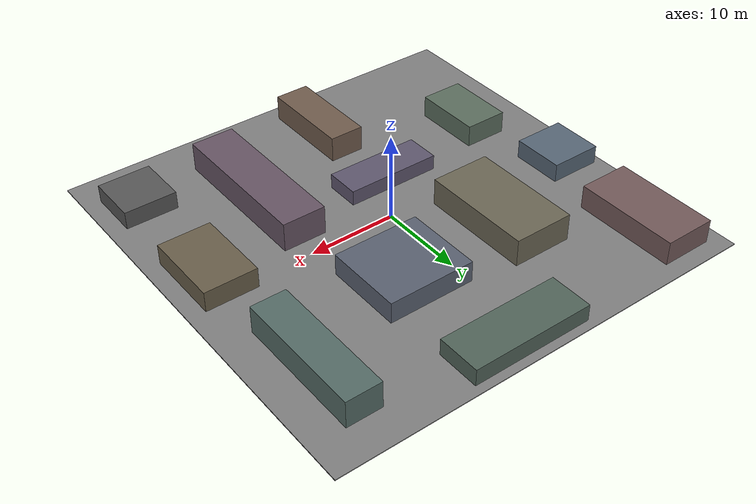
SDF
<?xml version="1.0" ?>
<sdf version="1.6">
  <world name="indoor_environment">
    <plugin name='ros_interface_plugin' filename='librotors_gazebo_ros_interface_plugin.so'/>
    <physics type='ode'>
      <gravity>0 0 -9.8</gravity>
      <max_step_size>0.001</max_step_size>
      <max_contacts>20</max_contacts> <!-- 最大碰撞检测点数 -->
      <real_time_factor>1</real_time_factor>
      <real_time_update_rate>1000</real_time_update_rate>
    </physics>
    <light name='sun' type='directional'>
      <cast_shadows>1</cast_shadows>
      <pose>0 0 10 0 -0 0</pose>
      <diffuse>0.8 0.8 0.8 1</diffuse>
      <specular>0.2 0.2 0.2 1</specular>
      <attenuation>
        <range>1000</range>
        <constant>0.9</constant>
        <linear>0.01</linear>
        <quadratic>0.001</quadratic>
      </attenuation>
      <direction>-0.5 0.1 -0.9</direction>
      <spot>
        <inner_angle>0</inner_angle>
        <outer_angle>0</outer_angle>
        <falloff>0</falloff>
      </spot>
    </light>

    <scene>
      <ambient>0.4 0.4 0.4 1</ambient>
      <background>0.7 0.7 0.7 1</background>
      <shadows>1</shadows>
    </scene>
    <spherical_coordinates>
      <surface_model>EARTH_WGS84</surface_model>
      <latitude_deg>0</latitude_deg>
      <longitude_deg>0</longitude_deg>
      <elevation>0</elevation>
      <heading_deg>0</heading_deg>
    </spherical_coordinates>

    <!-- 增加更大的地面 -->
    <model name="floor">
      <static>true</static> <!-- 地面是静态物体 -->
      <link name="floor_link">
        <collision name="collision">
          <geometry>
            <box>
              <size>50 50 0.1</size> <!-- 地面大小：50x50米，厚度0.1米 -->
            </box>
          </geometry>
        </collision>
        <visual name="visual">
          <geometry>
            <box>
              <size>50 50 0.1</size>
            </box>
          </geometry>
          <material>
            <ambient>0.5 0.5 0.5 1</ambient> <!-- 灰色地面 -->
            <diffuse>0.5 0.5 0.5 1</diffuse>
          </material>
        </visual>
      </link>
    </model>

    <!-- Random small box obstacles (20) -->
    <!-- Map boundary: x,y in [-25, 25]  -->

    <model name="obstacle_01">
      <static>true</static>
      <pose>-20 17 1.4 0 0 0</pose>
      <link name="link">
        <collision name="collision">
          <geometry><box><size>6 12 2.8</size></box></geometry>
        </collision>
        <visual name="visual">
          <geometry><box><size>6 12 2.8</size></box></geometry>
          <material>
            <ambient>0.45 0.35 0.35 1</ambient>
            <diffuse>0.45 0.35 0.35 1</diffuse>
          </material>
        </visual>
      </link>
    </model>

    <model name="obstacle_02">
      <static>true</static>
      <pose>-21 3 1.1 0 0 0</pose>
      <link name="link">
        <collision name="collision">
          <geometry><box><size>6 6 2.2</size></box></geometry>
        </collision>
        <visual name="visual">
          <geometry><box><size>6 6 2.2</size></box></geometry>
          <material>
            <ambient>0.34 0.40 0.46 1</ambient>
            <diffuse>0.34 0.40 0.46 1</diffuse>
          </material>
        </visual>
      </link>
    </model>

    <model name="obstacle_03">
      <static>true</static>
      <pose>-17.5 -9 1.3 0 0 0</pose>
      <link name="link">
        <collision name="collision">
          <geometry><box><size>5 8 2.6</size></box></geometry>
        </collision>
        <visual name="visual">
          <geometry><box><size>5 8 2.6</size></box></geometry>
          <material>
            <ambient>0.36 0.43 0.37 1</ambient>
            <diffuse>0.36 0.43 0.37 1</diffuse>
          </material>
        </visual>
      </link>
    </model>

    <model name="obstacle_04">
      <static>true</static>
      <pose>-8.5 7.5 1.6 0 0 0</pose>
      <link name="link">
        <collision name="collision">
          <geometry><box><size>7 13 3.2</size></box></geometry>
        </collision>
        <visual name="visual">
          <geometry><box><size>7 13 3.2</size></box></geometry>
          <material>
            <ambient>0.42 0.40 0.33 1</ambient>
            <diffuse>0.42 0.40 0.33 1</diffuse>
          </material>
        </visual>
      </link>
    </model>

    <model name="obstacle_05">
      <static>true</static>
      <pose>-3.5 -6.0 0.9 0 0 0</pose>
      <link name="link">
        <collision name="collision">
          <geometry><box><size>11 4 1.8</size></box></geometry>
        </collision>
        <visual name="visual">
          <geometry><box><size>11 4 1.8</size></box></geometry>
          <material>
            <ambient>0.37 0.34 0.43 1</ambient>
            <diffuse>0.37 0.34 0.43 1</diffuse>
          </material>
        </visual>
      </link>
    </model>

    <model name="obstacle_06">
      <static>true</static>
      <pose>2 21.5 1.0 0 0 0</pose>
      <link name="link">
        <collision name="collision">
          <geometry><box><size>14 5 2.0</size></box></geometry>
        </collision>
        <visual name="visual">
          <geometry><box><size>14 5 2.0</size></box></geometry>
          <material>
            <ambient>0.32 0.39 0.35 1</ambient>
            <diffuse>0.32 0.39 0.35 1</diffuse>
          </material>
        </visual>
      </link>
    </model>

    <model name="obstacle_07">
      <static>true</static>
      <pose>-3 -17.5 1.5 0 0 0</pose>
      <link name="link">
        <collision name="collision">
          <geometry><box><size>4 11 3.0</size></box></geometry>
        </collision>
        <visual name="visual">
          <geometry><box><size>4 11 3.0</size></box></geometry>
          <material>
            <ambient>0.44 0.36 0.30 1</ambient>
            <diffuse>0.44 0.36 0.30 1</diffuse>
          </material>
        </visual>
      </link>
    </model>

    <model name="obstacle_08">
      <static>true</static>
      <pose>5 8.5 1.25 0 0 0</pose>
      <link name="link">
        <collision name="collision">
          <geometry><box><size>10 9 2.5</size></box></geometry>
        </collision>
        <visual name="visual">
          <geometry><box><size>10 9 2.5</size></box></geometry>
          <material>
            <ambient>0.35 0.38 0.44 1</ambient>
            <diffuse>0.35 0.38 0.44 1</diffuse>
          </material>
        </visual>
      </link>
    </model>

    <model name="obstacle_09">
      <static>true</static>
      <pose>9.5 -11 1.7 0 0 0</pose>
      <link name="link">
        <collision name="collision">
          <geometry><box><size>5 18 3.4</size></box></geometry>
        </collision>
        <visual name="visual">
          <geometry><box><size>5 18 3.4</size></box></geometry>
          <material>
            <ambient>0.40 0.33 0.39 1</ambient>
            <diffuse>0.40 0.33 0.39 1</diffuse>
          </material>
        </visual>
      </link>
    </model>

    <model name="obstacle_10">
      <static>true</static>
      <pose>19 13.5 1.6 0 0 0</pose>
      <link name="link">
        <collision name="collision">
          <geometry><box><size>4 15 3.2</size></box></geometry>
        </collision>
        <visual name="visual">
          <geometry><box><size>4 15 3.2</size></box></geometry>
          <material>
            <ambient>0.33 0.42 0.40 1</ambient>
            <diffuse>0.33 0.42 0.40 1</diffuse>
          </material>
        </visual>
      </link>
    </model>

    <model name="obstacle_11">
      <static>true</static>
      <pose>20 -3.5 1.2 0 0 0</pose>
      <link name="link">
        <collision name="collision">
          <geometry><box><size>6 9 2.4</size></box></geometry>
        </collision>
        <visual name="visual">
          <geometry><box><size>6 9 2.4</size></box></geometry>
          <material>
            <ambient>0.41 0.37 0.29 1</ambient>
            <diffuse>0.41 0.37 0.29 1</diffuse>
          </material>
        </visual>
      </link>
    </model>

    <model name="obstacle_12">
      <static>true</static>
      <pose>20 -18 1.05 0 0 0</pose>
      <link name="link">
        <collision name="collision">
          <geometry><box><size>6 6 2.1</size></box></geometry>
        </collision>
        <visual name="visual">
          <geometry><box><size>6 6 2.1</size></box></geometry>
          <material>
            <ambient>0.34 0.34 0.34 1</ambient>
            <diffuse>0.34 0.34 0.34 1</diffuse>
          </material>
        </visual>
      </link>
    </model>

  </world>
</sdf>
